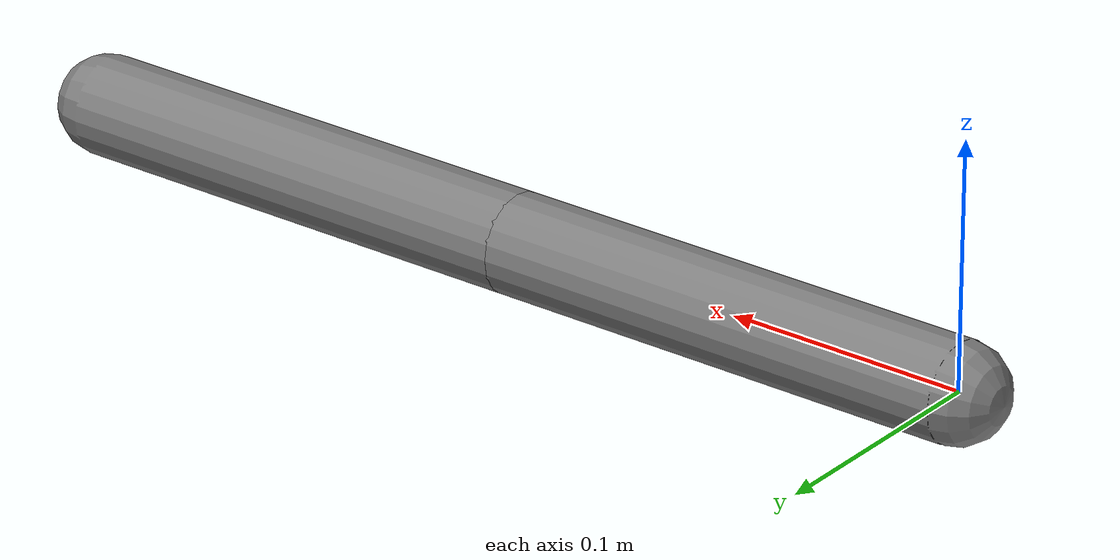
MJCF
<mujoco model="hinge_pair_joint_eq_quadratic">
  <worldbody>
    <body name="arm1" pos="0 0 0">
      <joint name="j1" type="hinge" axis="0 1 0"/>
      <inertial mass="0.5" pos="0.1 0 0" diaginertia="0.01 0.01 0.01"/>
      <geom type="capsule" fromto="0 0 0 0.2 0 0" size="0.02" contype="0" conaffinity="0"/>
      <body name="arm2" pos="0.2 0 0">
        <joint name="j2" type="hinge" axis="0 1 0"/>
        <inertial mass="0.5" pos="0.1 0 0" diaginertia="0.01 0.01 0.01"/>
        <geom type="capsule" fromto="0 0 0 0.2 0 0" size="0.02" contype="0" conaffinity="0"/>
      </body>
    </body>
  </worldbody>
  <equality>
    <joint joint1="j1" joint2="j2" polycoef="0 1 0.5 0 0" solimp="0.95 0.99 0.001" solref="0.005 1"/>
  </equality>
</mujoco>
